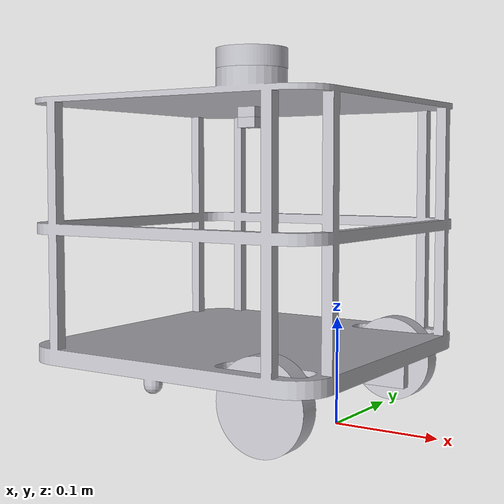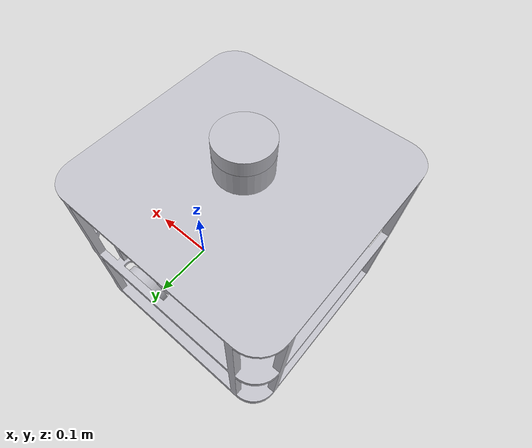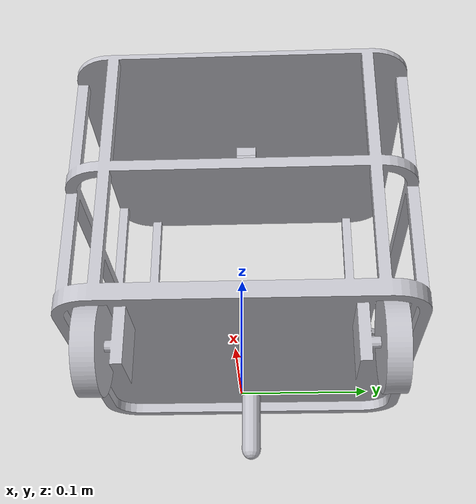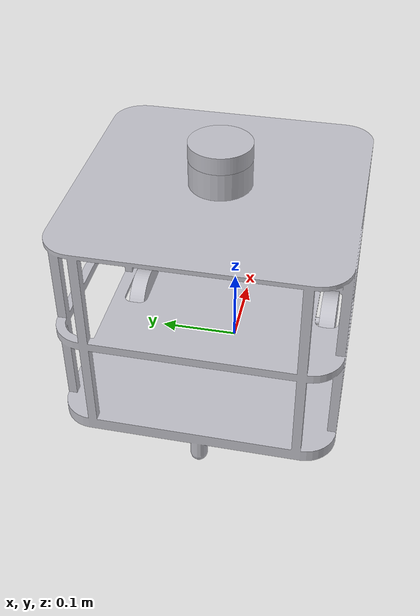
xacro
<?xml version="1.0" ?>
<robot name="bogie" xmlns:xacro="http://www.ros.org/wiki/xacro">

<xacro:include filename="$(find bogie_description)/urdf/materials.xacro" />
<xacro:include filename="$(find bogie_description)/urdf/bogie.trans" />
<xacro:include filename="$(find bogie_description)/urdf/bogie.gazebo" />
<link name="base_footprint"/>

<link name="base_link">
  <inertial>
    <origin xyz="-0.09506667654178791 -8.169035858724671e-11 0.18164371614615132" rpy="0 0 0"/>
    <mass value="2.101736662966977"/>
    <inertia ixx="0.0448" iyy="0.045392" izz="0.039355" ixy="-1e-06" iyz="-0.0" ixz="4.9e-05"/>
  </inertial>
  <visual>
    <origin xyz="0 0 0" rpy="0 0 0"/>
    <geometry>
      <mesh filename="package://bogie_description/meshes/base_link.stl" scale="0.001 0.001 0.001"/>
    </geometry>
    <material name="silver"/>
  </visual>
  <collision>
    <origin xyz="0 0 0" rpy="0 0 0"/>
    <geometry>
      <mesh filename="package://bogie_description/meshes/base_link.stl" scale="0.001 0.001 0.001"/>
    </geometry>
  </collision>
</link>

<link name="right_wheel">
  <inertial>
    <origin xyz="4.006936401468532e-17 -0.010000000000000023 6.332993920943331e-10" rpy="0 0 0"/>
    <mass value="0.10554573218816608"/>
    <inertia ixx="5.1e-05" iyy="9.5e-05" izz="5.1e-05" ixy="-0.0" iyz="0.0" ixz="0.0"/>
  </inertial>
  <visual>
    <origin xyz="-0.0 0.115 -0.0425" rpy="0 0 0"/>
    <geometry>
      <mesh filename="package://bogie_description/meshes/right_wheel.stl" scale="0.001 0.001 0.001"/>
    </geometry>
    <material name="silver"/>
  </visual>
  <collision>
    <origin xyz="-0.0 0.115 -0.0425" rpy="0 0 0"/>
    <geometry>
      <mesh filename="package://bogie_description/meshes/right_wheel.stl" scale="0.001 0.001 0.001"/>
    </geometry>
  </collision>
</link>

<link name="left_wheel">
  <inertial>
    <origin xyz="4.006936401468532e-17 0.009999999999999995 6.332993920943331e-10" rpy="0 0 0"/>
    <mass value="0.10554573218816608"/>
    <inertia ixx="5.1e-05" iyy="9.5e-05" izz="5.1e-05" ixy="-0.0" iyz="0.0" ixz="0.0"/>
  </inertial>
  <visual>
    <origin xyz="-0.0 -0.115 -0.0425" rpy="0 0 0"/>
    <geometry>
      <mesh filename="package://bogie_description/meshes/left_wheel.stl" scale="0.001 0.001 0.001"/>
    </geometry>
    <material name="silver"/>
  </visual>
  <collision>
    <origin xyz="-0.0 -0.115 -0.0425" rpy="0 0 0"/>
    <geometry>
      <mesh filename="package://bogie_description/meshes/left_wheel.stl" scale="0.001 0.001 0.001"/>
    </geometry>
  </collision>
</link>

<link name="base_laser_link">
  <inertial>
    <origin xyz="-1.4156103095297468e-09 2.2723795526381552e-17 0.009749999999999981" rpy="0 0 0"/>
    <mass value="0.12202283587753035"/>
    <inertia ixx="4.1e-05" iyy="4.1e-05" izz="7.5e-05" ixy="-0.0" iyz="-0.0" ixz="0.0"/>
  </inertial>
  <visual>
    <origin xyz="0.095 -0.0 -0.334" rpy="0 0 0"/>
    <geometry>
      <mesh filename="package://bogie_description/meshes/base_laser_link.stl" scale="0.001 0.001 0.001"/>
    </geometry>
    <material name="silver"/>
  </visual>
  <collision>
    <origin xyz="0.095 -0.0 -0.334" rpy="0 0 0"/>
    <geometry>
      <mesh filename="package://bogie_description/meshes/base_laser_link.stl" scale="0.001 0.001 0.001"/>
    </geometry>
  </collision>
</link>

<link name="imu_link">
  <inertial>
    <origin xyz="0.0 0.0 -0.0050000000000000044" rpy="0 0 0"/>
    <mass value="0.0037199999999999998"/>
    <inertia ixx="0.0" iyy="0.0" izz="0.0" ixy="0.0" iyz="0.0" ixz="0.0"/>
  </inertial>
  <visual>
    <origin xyz="0.095 -0.0 -0.2875" rpy="0 0 0"/>
    <geometry>
      <mesh filename="package://bogie_description/meshes/imu_link.stl" scale="0.001 0.001 0.001"/>
    </geometry>
    <material name="silver"/>
  </visual>
  <collision>
    <origin xyz="0.095 -0.0 -0.2875" rpy="0 0 0"/>
    <geometry>
      <mesh filename="package://bogie_description/meshes/imu_link.stl" scale="0.001 0.001 0.001"/>
    </geometry>
  </collision>
</link>

<joint name="base_link_joint" type="fixed">
  <origin xyz="-0.0 0.0 0.0" rpy="0 0 0"/>
  <parent link="base_footprint"/>
  <child link="base_link"/>
</joint>

<joint name="Revolute 1" type="continuous">
  <origin xyz="0.0 -0.115 0.0425" rpy="0 0 0"/>
  <parent link="base_link"/>
  <child link="right_wheel"/>
  <axis xyz="0.0 -1.0 0.0"/>
</joint>

<joint name="Revolute 2" type="continuous">
  <origin xyz="0.0 0.115 0.0425" rpy="0 0 0"/>
  <parent link="base_link"/>
  <child link="left_wheel"/>
  <axis xyz="0.0 1.0 0.0"/>
</joint>

<joint name="Rigid 3" type="fixed">
  <origin xyz="-0.095 0.0 0.334" rpy="0 0 0"/>
  <parent link="base_link"/>
  <child link="base_laser_link"/>
</joint>

<joint name="Rigid 4" type="fixed">
  <origin xyz="-0.095 0.0 0.2875" rpy="0 0 0"/>
  <parent link="base_link"/>
  <child link="imu_link"/>
</joint>

</robot>
